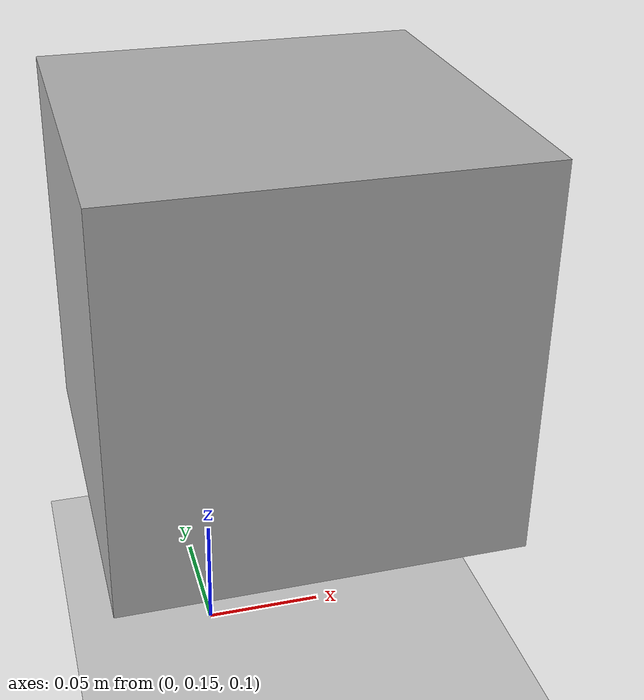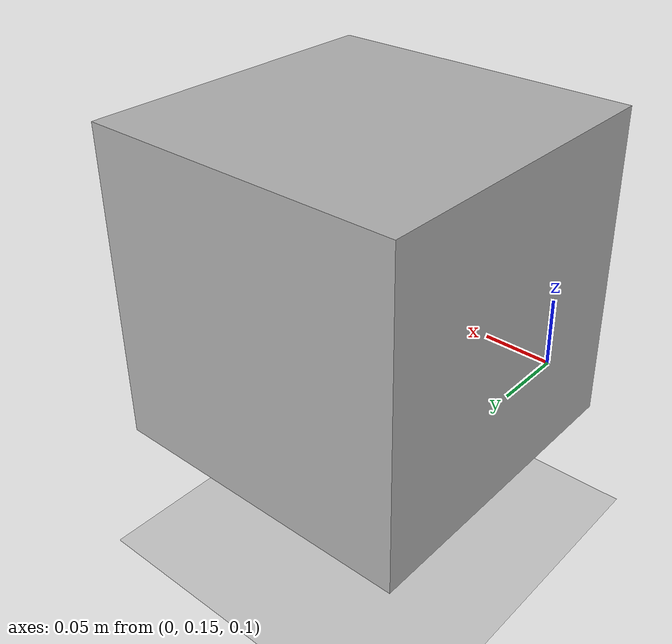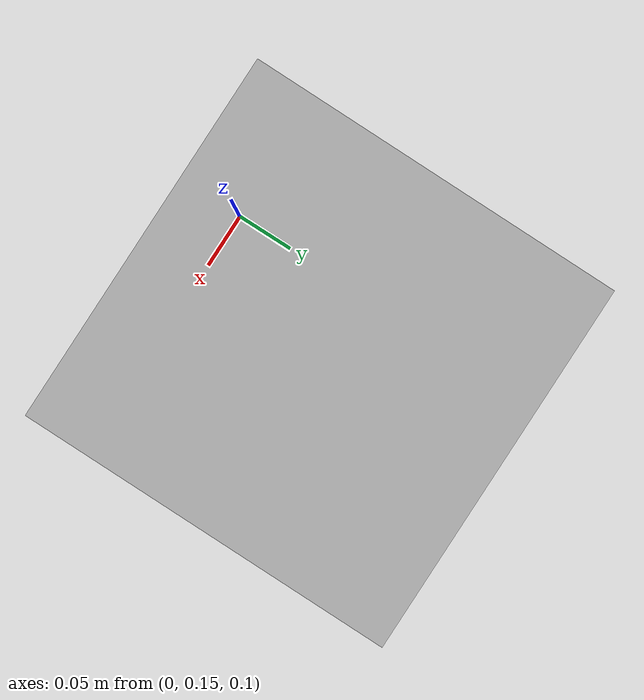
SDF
<?xml version="1.0" ?>

<sdf version="1.6">
  <world name="default">

    <!-- Plugin for simulating physics -->
    <plugin
      filename="gz-sim-physics-system"
      name="gz::sim::systems::Physics">
      <engine>
        <filename>libgz-physics-bullet-featherstone-plugin.so</filename>
      </engine>
    </plugin>

    <!-- Plugin for handling user commands -->
    <plugin
      filename="gz-sim-user-commands-system"
      name="gz::sim::systems::UserCommands">
    </plugin>

    <!-- Plugin for broadcasting scene updates -->
    <plugin
      filename="gz-sim-scene-broadcaster-system"
      name="gz::sim::systems::SceneBroadcaster">
    </plugin>

    <!-- Plugin for handling sensors like the LIDAR -->
    <plugin
      filename="gz-sim-sensors-system"
      name="gz::sim::systems::Sensors">
      <render_engine>ogre2</render_engine>
    </plugin>

    <!-- Plugin for IMU -->
    <plugin filename="gz-sim-imu-system"
      name="gz::sim::systems::Imu">
    </plugin>

    <!-- To add realistic gravity, do: 0.0 0.0 -9.8, otherwise do 0.0 0.0 0.0 -->
    <gravity>0.0 0.0 -9.8</gravity>

    <!-- Include a model of the Sun from an external URI -->
    <include>
      <uri>
        https://fuel.gazebosim.org/1.0/OpenRobotics/models/Sun
      </uri>
    </include>

    <!-- Local Ground Plane with modified friction -->
    <model name="ground_plane">
      <static>true</static>
      <link name="link">
        <collision name="collision">
          <geometry>
            <plane>
              <normal>0 0 1</normal>
            </plane>
          </geometry>
          <surface>
            <friction>
              <torsional>
                <coefficient>0.0</coefficient>
              </torsional>
            </friction>
          </surface>
        </collision>
        <visual name="visual">
          <geometry>
            <plane>
              <normal>0 0 1</normal>
              <size>100 100</size>
            </plane>
          </geometry>
          <material>
            <ambient>0.8 0.8 0.8 1</ambient>
            <diffuse>0.8 0.8 0.8 1</diffuse>
            <specular>0.8 0.8 0.8 1</specular>
          </material>
        </visual>
      </link>
    </model>

    <!-- Define scene properties -->
    <scene>
      <shadows>false</shadows>
    </scene>

    <!-- Add red block  -->
      <model name="red_block">
      <pose>0.0607 0.27 0.2245 0 0 0</pose>
      <link name="link">
        <inertial>
          <mass>0.01</mass>
          <inertia>
            <ixx>0.000002042</ixx>
            <ixy>0.0</ixy>
            <ixz>0.0</ixz>
            <iyy>0.000002042</iyy>
            <iyz>0.0</iyz>
            <izz>0.000002042</izz>
          </inertia>
        </inertial>
        <visual name="visual">
          <geometry>
            <box>
              <size>0.035 0.035 0.035</size>
            </box>
          </geometry>
          <material>
            <ambient>0.8000858 0.01408277 0.01408277 1</ambient>
            <diffuse>0.8000858 0.01408277 0.01408277 1</diffuse>
            <specular>0.1 0.1 0.1 1</specular>
          </material>
        </visual>
        <collision name="collision">
          <geometry>
            <box>
              <size>0.035 0.035 0.035</size>
            </box>
          </geometry>
        </collision>
      </link>
    </model>

    <!-- Box to support the red block -->
    <include>
      <uri>model://box_for_block</uri>
      <pose>0.0607 0.27 0.197 0 0 0</pose>
    </include>

  </world>
</sdf>

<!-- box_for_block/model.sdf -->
<sdf version="1.6">
  <model name='box'>
    <pose>0.41110848594480309 0.22091487055839254 0.5 0 0 0</pose>
    <link name='box_link'>
      <inertial>
        <inertia>
          <ixx>0.16666</ixx>
          <ixy>0</ixy>
          <ixz>0</ixz>
          <iyy>0.16666</iyy>
          <iyz>0</iyz>
          <izz>0.16666</izz>
        </inertia>
        <mass>1</mass>
        <pose>0 0 0 0 0 0</pose>
      </inertial>
      <collision name='box_collision'>
        <geometry>
          <box>
            <size>0.207 0.207 0.207</size>
          </box>
        </geometry>
        <surface>
          <friction>
            <ode/>
          </friction>
          <bounce/>
          <contact/>
        </surface>
      </collision>
      <visual name='box_visual'>
        <geometry>
          <box>
            <size>0.207 0.207 0.207</size>
          </box>
        </geometry>
        <material>
          <ambient>0.300000012 0.300000012 0.300000012 1</ambient>
          <diffuse>0.699999988 0.699999988 0.699999988 1</diffuse>
          <specular>1 1 1 1</specular>
        </material>
      </visual>
      <pose>0 0 0 0 0 0</pose>
      <enable_wind>false</enable_wind>
    </link>
    <static>false</static>
    <self_collide>false</self_collide>
  </model>
</sdf>
